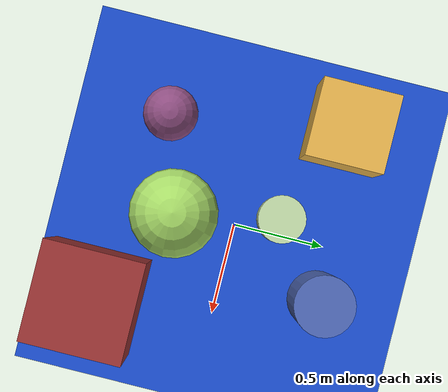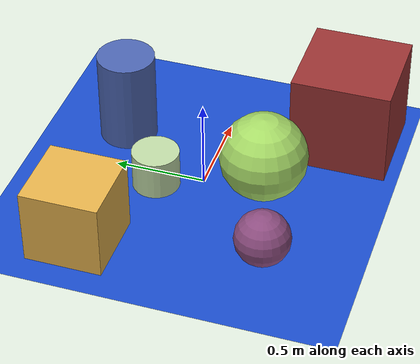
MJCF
<mujoco>
   <asset>
<texture type="skybox" builtin="gradient" rgb1="0.8 0.5 0.2" rgb2="0.4 0.1 0.3" width="256" height="256"/>
<texture name="checker_0" builtin="checker" type="2d" rgb1="0.9 0.9 0.5" rgb2="0.4 0.8 0.3" width="200" height="200"/>
<texture name="checker_1" builtin="checker" type="2d" rgb1="0.4 0.6 0.2" rgb2="0.7 0.0 0.8" width="200" height="200"/>
<texture name="flat_2" builtin="flat" rgb1="0.3 0.4 0.7" rgb2="0.3 0.4 0.7"  width="200" height="200"/>
<texture name="flat_3" builtin="flat" rgb1="0.6 0.2 0.2" rgb2="0.6 0.2 0.2"  width="200" height="200"/>
<texture name="checker_4" builtin="checker" type="2d" rgb1="0.9 1.0 0.4" rgb2="0.6 0.7 0.9" width="200" height="200"/>
<texture name="flat_5" builtin="flat" rgb1="0.9 0.7 0.3" rgb2="0.9 0.7 0.3"  width="200" height="200"/><material name="checker_0_mat" reflectance="0" texrepeat="5 5" texture="checker_0" texuniform="false" />
<material name="checker_1_mat" reflectance="0" texrepeat="10 10" texture="checker_1" texuniform="false" />
<material name="flat_2_mat" reflectance="0" texture="flat_2" texuniform="true"/>
<material name="flat_3_mat" reflectance="0" texture="flat_3" texuniform="true"/>
<material name="checker_4_mat" reflectance="0" texrepeat="8 8" texture="checker_4" texuniform="false" />
<material name="flat_5_mat" reflectance="0" texture="flat_5" texuniform="true"/>
   </asset>

   <worldbody>
      <light diffuse=".9 .9 .9" pos="0 0 3" dir="0 0 -1"/>
     <geom type="plane" size="1 1 0.1" rgba="0.1 0.3 0.8 1"/>
<geom type="sphere" pos="0.02 -0.33 0.24" size="0.24 0.24 0.24" material="checker_0_mat" />
<geom type="sphere" pos="-0.5 -0.48 0.15" size="0.15 0.15 0.15" material="checker_1_mat" />
<geom type="cylinder" pos="0.29 0.54 0.26" size="0.16 0.26 0.26" material="flat_2_mat" />
<geom type="box" pos="0.57 -0.66 0.27" size="0.27 0.27 0.27" material="flat_3_mat" />
<geom type="cylinder" pos="-0.09 0.24 0.11" size="0.13 0.11 0.11" material="checker_4_mat" />
<geom type="box" pos="-0.65 0.47 0.21" size="0.21 0.21 0.21" material="flat_5_mat" /><camera euler="60 0 180" fovy="60" name="camera_a" pos="0 -1.5 1"></camera>   </worldbody>
</mujoco>
